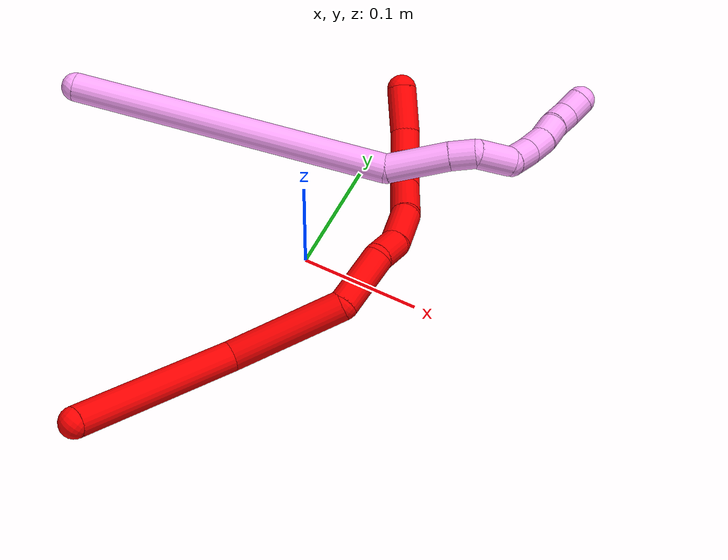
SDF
<sdf version="1.7">
 <world name="default">
  <model name="photoneo_s_sensor">
   <static>1</static>
   <pose>0 0 2 1.57079 1.57079 3.14159</pose>
   <link name="link">
    <inertial><mass>0.1</mass></inertial>
    <sensor name="sensor" type="depth">
     <update_rate>30</update_rate>
     <camera>
      <horizontal_fov>1.22</horizontal_fov>
      <image><width>1920</width><height>1200</height><format>B8G8R8</format></image>
      <clip><near>0.1</near><far>4</far></clip>
      <depth_camera><output>points</output></depth_camera>
     </camera>
     <plugin name="camera_plugin" filename="libgazebo_ros_depth_camera.so">
      <baseline>0.2</baseline>
      <alwaysOn>1</alwaysOn>
      <updateRate>0.0</updateRate>
      <cameraName>camera_ir</cameraName>
      <imageTopicName>/camera/color/image_raw</imageTopicName>
      <cameraInfoTopicName>/camera/color/camera_info</cameraInfoTopicName>
      <depthImageTopicName>/camera/depth/image_raw</depthImageTopicName>
      <depthImageCameraInfoTopicName>/camera/depth/camera_info</depthImageCameraInfoTopicName>
      <pointCloudTopicName>/camera/depth/points</pointCloudTopicName>
      <frameName>fr_optical</frameName>
      <pointCloudCutoff>0.1</pointCloudCutoff>
      <pointCloudCutoffMax>2.0</pointCloudCutoffMax>
      <distortionK1>0</distortionK1>
      <distortionK2>0</distortionK2>
      <distortionK3>0</distortionK3>
      <distortionT1>0</distortionT1>
      <distortionT2>0</distortionT2>
      <CxPrime>0</CxPrime>
      <Cx>0</Cx>
      <Cy>0</Cy>
      <focalLength>0</focalLength>
      <hackBaseline>0</hackBaseline>
     </plugin>
    </sensor>
   </link>
  </model>
  <model name="bin">
   <static>1</static>
   <link name="bottom">
    <collision name="collision-bottom">
     <pose>0 0 -0.01 0 -0 0</pose>
     <geometry><box><size>0.8 0.6 0.02</size></box></geometry>
     <surface>
      <friction><ode><mu>100</mu><mu2>100</mu2></ode></friction>
      <contact><collide_bitmask>65535</collide_bitmask></contact>
     </surface>
    </collision>
   </link>
   <link name="west_wall">
    <collision name="collision-west_wall">
     <pose>-0.41 0 0.1 0 -0 0</pose>
     <geometry><box><size>0.02 0.6 0.2</size></box></geometry>
     <surface>
      <friction><ode><mu>100</mu><mu2>100</mu2></ode></friction>
      <contact><collide_bitmask>65535</collide_bitmask></contact>
     </surface>
    </collision>
   </link>
   <link name="east_wall">
    <collision name="collision-east_wall">
     <pose>0.41 0 0.1 0 -0 0</pose>
     <geometry><box><size>0.02 0.6 0.2</size></box></geometry>
     <surface>
      <friction><ode><mu>100</mu><mu2>100</mu2></ode></friction>
      <contact><collide_bitmask>65535</collide_bitmask></contact>
     </surface>
    </collision>
   </link>
   <link name="south_wall">
    <collision name="collision-south_wall">
     <pose>0 -0.31 0.1 0 -0 0</pose>
     <geometry><box><size>0.8 0.02 0.2</size></box></geometry>
     <surface>
      <friction><ode><mu>100</mu><mu2>100</mu2></ode></friction>
      <contact><collide_bitmask>65535</collide_bitmask></contact>
     </surface>
    </collision>
   </link>
   <link name="north_wall">
    <collision name="collision-north_wall">
     <pose>0 0.31 0.1 0 -0 0</pose>
     <geometry><box><size>0.8 0.02 0.2</size></box></geometry>
     <surface>
      <friction><ode><mu>100</mu><mu2>100</mu2></ode></friction>
      <contact><collide_bitmask>65535</collide_bitmask></contact>
     </surface>
    </collision>
   </link>
  </model>
  <model name="2">
   <static>0</static>
   <link name="2">
    <collision name="collision-cylinder-e_1_1_4">
     <pose>0.003201 0.069492 -0.030069 -1.97916 0.04225 -0.064304</pose>
     <geometry><cylinder><radius>0.0125</radius><length>0.151572</length></cylinder></geometry>
     <surface>
      <friction><ode><mu>1.16</mu><mu2>1.16</mu2><slip1>0</slip1><slip2>0</slip2></ode></friction>
      <contact><ode><kp>1e+06</kp><kd>1</kd><max_vel>0</max_vel><min_depth>0.001</min_depth></ode></contact>
     </surface>
    </collision>
    <visual name="visual-cylinder-e_1_1_4">
     <pose>0.003201 0.069492 -0.030069 -1.97916 0.04225 -0.064304</pose>
     <geometry><cylinder><radius>0.0125</radius><length>0.151572</length></cylinder></geometry>
     <material><ambient>1 0 0 1</ambient></material>
    </visual>
    <collision name="collision-cylinder-e_2_4_5">
     <pose>0.0408 0.166781 -0.081696 -2.23047 0.774196 -1.388</pose>
     <geometry><cylinder><radius>0.0125</radius><length>0.0984</length></cylinder></geometry>
     <surface>
      <friction><ode><mu>1.16</mu><mu2>1.16</mu2><slip1>0</slip1><slip2>0</slip2></ode></friction>
      <contact><ode><kp>1e+06</kp><kd>1</kd><max_vel>0</max_vel><min_depth>0.001</min_depth></ode></contact>
     </surface>
    </collision>
    <visual name="visual-cylinder-e_2_4_5">
     <pose>0.0408 0.166781 -0.081696 -2.23047 0.774196 -1.388</pose>
     <geometry><cylinder><radius>0.0125</radius><length>0.0984</length></cylinder></geometry>
     <material><ambient>1 0 0 1</ambient></material>
    </visual>
    <collision name="collision-cylinder-e_3_5_6">
     <pose>0.084958 0.218039 -0.10255 -1.54075 0.39407 -0.382692</pose>
     <geometry><cylinder><radius>0.0125</radius><length>0.050839</length></cylinder></geometry>
     <surface>
      <friction><ode><mu>1.16</mu><mu2>1.16</mu2><slip1>0</slip1><slip2>0</slip2></ode></friction>
      <contact><ode><kp>1e+06</kp><kd>1</kd><max_vel>0</max_vel><min_depth>0.001</min_depth></ode></contact>
     </surface>
    </collision>
    <visual name="visual-cylinder-e_3_5_6">
     <pose>0.084958 0.218039 -0.10255 -1.54075 0.39407 -0.382692</pose>
     <geometry><cylinder><radius>0.0125</radius><length>0.050839</length></cylinder></geometry>
     <material><ambient>1 0 0 1</ambient></material>
    </visual>
    <collision name="collision-cylinder-e_4_6_7">
     <pose>0.09453 0.254264 -0.10402 -1.73961 -0.014492 0.017171</pose>
     <geometry><cylinder><radius>0.0125</radius><length>0.025901</length></cylinder></geometry>
     <surface>
      <friction><ode><mu>1.16</mu><mu2>1.16</mu2><slip1>0</slip1><slip2>0</slip2></ode></friction>
      <contact><ode><kp>1e+06</kp><kd>1</kd><max_vel>0</max_vel><min_depth>0.001</min_depth></ode></contact>
     </surface>
    </collision>
    <visual name="visual-cylinder-e_4_6_7">
     <pose>0.09453 0.254264 -0.10402 -1.73961 -0.014492 0.017171</pose>
     <geometry><cylinder><radius>0.0125</radius><length>0.025901</length></cylinder></geometry>
     <material><ambient>1 0 0 1</ambient></material>
    </visual>
    <collision name="collision-cylinder-e_5_7_8">
     <pose>0.093548 0.28514 -0.102915 -1.39159 -0.043101 0.035996</pose>
     <geometry><cylinder><radius>0.0125</radius><length>0.036845</length></cylinder></geometry>
     <surface>
      <friction><ode><mu>1.16</mu><mu2>1.16</mu2><slip1>0</slip1><slip2>0</slip2></ode></friction>
      <contact><ode><kp>1e+06</kp><kd>1</kd><max_vel>0</max_vel><min_depth>0.001</min_depth></ode></contact>
     </surface>
    </collision>
    <visual name="visual-cylinder-e_5_7_8">
     <pose>0.093548 0.28514 -0.102915 -1.39159 -0.043101 0.035996</pose>
     <geometry><cylinder><radius>0.0125</radius><length>0.036845</length></cylinder></geometry>
     <material><ambient>1 0 0 1</ambient></material>
    </visual>
    <collision name="collision-cylinder-e_6_8_9">
     <pose>0.087153 0.322217 -0.092946 -1.23179 -0.271647 0.192844</pose>
     <geometry><cylinder><radius>0.0125</radius><length>0.041753</length></cylinder></geometry>
     <surface>
      <friction><ode><mu>1.16</mu><mu2>1.16</mu2><slip1>0</slip1><slip2>0</slip2></ode></friction>
      <contact><ode><kp>1e+06</kp><kd>1</kd><max_vel>0</max_vel><min_depth>0.001</min_depth></ode></contact>
     </surface>
    </collision>
    <visual name="visual-cylinder-e_6_8_9">
     <pose>0.087153 0.322217 -0.092946 -1.23179 -0.271647 0.192844</pose>
     <geometry><cylinder><radius>0.0125</radius><length>0.041753</length></cylinder></geometry>
     <material><ambient>1 0 0 1</ambient></material>
    </visual>
    <collision name="collision-cylinder-e_7_9_10">
     <pose>0.083096 0.355043 -0.078282 -1.04857 0.09633 -0.055733</pose>
     <geometry><cylinder><radius>0.0125</radius><length>0.032131</length></cylinder></geometry>
     <surface>
      <friction><ode><mu>1.16</mu><mu2>1.16</mu2><slip1>0</slip1><slip2>0</slip2></ode></friction>
      <contact><ode><kp>1e+06</kp><kd>1</kd><max_vel>0</max_vel><min_depth>0.001</min_depth></ode></contact>
     </surface>
    </collision>
    <visual name="visual-cylinder-e_7_9_10">
     <pose>0.083096 0.355043 -0.078282 -1.04857 0.09633 -0.055733</pose>
     <geometry><cylinder><radius>0.0125</radius><length>0.032131</length></cylinder></geometry>
     <material><ambient>1 0 0 1</ambient></material>
    </visual>
    <collision name="collision-cylinder-e_8_10_11">
     <pose>0.087536 0.377778 -0.063917 -0.946888 0.258732 -0.133097</pose>
     <geometry><cylinder><radius>0.0125</radius><length>0.022624</length></cylinder></geometry>
     <surface>
      <friction><ode><mu>1.16</mu><mu2>1.16</mu2><slip1>0</slip1><slip2>0</slip2></ode></friction>
      <contact><ode><kp>1e+06</kp><kd>1</kd><max_vel>0</max_vel><min_depth>0.001</min_depth></ode></contact>
     </surface>
    </collision>
    <visual name="visual-cylinder-e_8_10_11">
     <pose>0.087536 0.377778 -0.063917 -0.946888 0.258732 -0.133097</pose>
     <geometry><cylinder><radius>0.0125</radius><length>0.022624</length></cylinder></geometry>
     <material><ambient>1 0 0 1</ambient></material>
    </visual>
    <collision name="collision-cylinder-e_9_11_2">
     <pose>0.097368 0.399978 -0.044375 -0.791863 0.354894 -0.149645</pose>
     <geometry><cylinder><radius>0.0125</radius><length>0.039934</length></cylinder></geometry>
     <surface>
      <friction><ode><mu>1.16</mu><mu2>1.16</mu2><slip1>0</slip1><slip2>0</slip2></ode></friction>
      <contact><ode><kp>1e+06</kp><kd>1</kd><max_vel>0</max_vel><min_depth>0.001</min_depth></ode></contact>
     </surface>
    </collision>
    <visual name="visual-cylinder-e_9_11_2">
     <pose>0.097368 0.399978 -0.044375 -0.791863 0.354894 -0.149645</pose>
     <geometry><cylinder><radius>0.0125</radius><length>0.039934</length></cylinder></geometry>
     <material><ambient>1 0 0 1</ambient></material>
    </visual>
    <collision name="collision-sphere-2">
     <pose>0.104307 0.413302 -0.031222 0 -0 0</pose>
     <geometry><sphere><radius>0.0125</radius></sphere></geometry>
     <surface>
      <friction><ode><mu>1.16</mu><mu2>1.16</mu2><slip1>0</slip1><slip2>0</slip2></ode></friction>
      <contact><ode><kp>1e+06</kp><kd>1</kd><max_vel>0</max_vel><min_depth>0.001</min_depth></ode></contact>
     </surface>
    </collision>
    <visual name="visual-sphere-2">
     <pose>0.104307 0.413302 -0.031222 0 -0 0</pose>
     <geometry><sphere><radius>0.0125</radius></sphere></geometry>
     <material><ambient>1 0 0 1</ambient></material>
    </visual>
    <collision name="collision-sphere-11">
     <pose>0.09043 0.386653 -0.057528 0 -0 0</pose>
     <geometry><sphere><radius>0.0125</radius></sphere></geometry>
     <surface>
      <friction><ode><mu>1.16</mu><mu2>1.16</mu2><slip1>0</slip1><slip2>0</slip2></ode></friction>
      <contact><ode><kp>1e+06</kp><kd>1</kd><max_vel>0</max_vel><min_depth>0.001</min_depth></ode></contact>
     </surface>
    </collision>
    <visual name="visual-sphere-11">
     <pose>0.09043 0.386653 -0.057528 0 -0 0</pose>
     <geometry><sphere><radius>0.0125</radius></sphere></geometry>
     <material><ambient>1 0 0 1</ambient></material>
    </visual>
    <collision name="collision-sphere-10">
     <pose>0.084642 0.368903 -0.070305 0 -0 0</pose>
     <geometry><sphere><radius>0.0125</radius></sphere></geometry>
     <surface>
      <friction><ode><mu>1.16</mu><mu2>1.16</mu2><slip1>0</slip1><slip2>0</slip2></ode></friction>
      <contact><ode><kp>1e+06</kp><kd>1</kd><max_vel>0</max_vel><min_depth>0.001</min_depth></ode></contact>
     </surface>
    </collision>
    <visual name="visual-sphere-10">
     <pose>0.084642 0.368903 -0.070305 0 -0 0</pose>
     <geometry><sphere><radius>0.0125</radius></sphere></geometry>
     <material><ambient>1 0 0 1</ambient></material>
    </visual>
    <collision name="collision-sphere-9">
     <pose>0.081551 0.341184 -0.086258 0 -0 0</pose>
     <geometry><sphere><radius>0.0125</radius></sphere></geometry>
     <surface>
      <friction><ode><mu>1.16</mu><mu2>1.16</mu2><slip1>0</slip1><slip2>0</slip2></ode></friction>
      <contact><ode><kp>1e+06</kp><kd>1</kd><max_vel>0</max_vel><min_depth>0.001</min_depth></ode></contact>
     </surface>
    </collision>
    <visual name="visual-sphere-9">
     <pose>0.081551 0.341184 -0.086258 0 -0 0</pose>
     <geometry><sphere><radius>0.0125</radius></sphere></geometry>
     <material><ambient>1 0 0 1</ambient></material>
    </visual>
    <collision name="collision-sphere-4">
     <pose>0.006402 0.138984 -0.060137 0 -0 0</pose>
     <geometry><sphere><radius>0.0125</radius></sphere></geometry>
     <surface>
      <friction><ode><mu>1.16</mu><mu2>1.16</mu2><slip1>0</slip1><slip2>0</slip2></ode></friction>
      <contact><ode><kp>1e+06</kp><kd>1</kd><max_vel>0</max_vel><min_depth>0.001</min_depth></ode></contact>
     </surface>
    </collision>
    <visual name="visual-sphere-4">
     <pose>0.006402 0.138984 -0.060137 0 -0 0</pose>
     <geometry><sphere><radius>0.0125</radius></sphere></geometry>
     <material><ambient>1 0 0 1</ambient></material>
    </visual>
    <collision name="collision-sphere-1">
     <geometry><sphere><radius>0.0125</radius></sphere></geometry>
     <surface>
      <friction><ode><mu>1.16</mu><mu2>1.16</mu2><slip1>0</slip1><slip2>0</slip2></ode></friction>
      <contact><ode><kp>1e+06</kp><kd>1</kd><max_vel>0</max_vel><min_depth>0.001</min_depth></ode></contact>
     </surface>
    </collision>
    <visual name="visual-sphere-1">
     <geometry><sphere><radius>0.0125</radius></sphere></geometry>
     <material><ambient>1 0 0 1</ambient></material>
    </visual>
    <collision name="collision-sphere-8">
     <pose>0.092754 0.30325 -0.099634 0 -0 0</pose>
     <geometry><sphere><radius>0.0125</radius></sphere></geometry>
     <surface>
      <friction><ode><mu>1.16</mu><mu2>1.16</mu2><slip1>0</slip1><slip2>0</slip2></ode></friction>
      <contact><ode><kp>1e+06</kp><kd>1</kd><max_vel>0</max_vel><min_depth>0.001</min_depth></ode></contact>
     </surface>
    </collision>
    <visual name="visual-sphere-8">
     <pose>0.092754 0.30325 -0.099634 0 -0 0</pose>
     <geometry><sphere><radius>0.0125</radius></sphere></geometry>
     <material><ambient>1 0 0 1</ambient></material>
    </visual>
    <collision name="collision-sphere-5">
     <pose>0.075198 0.194578 -0.103255 0 -0 0</pose>
     <geometry><sphere><radius>0.0125</radius></sphere></geometry>
     <surface>
      <friction><ode><mu>1.16</mu><mu2>1.16</mu2><slip1>0</slip1><slip2>0</slip2></ode></friction>
      <contact><ode><kp>1e+06</kp><kd>1</kd><max_vel>0</max_vel><min_depth>0.001</min_depth></ode></contact>
     </surface>
    </collision>
    <visual name="visual-sphere-5">
     <pose>0.075198 0.194578 -0.103255 0 -0 0</pose>
     <geometry><sphere><radius>0.0125</radius></sphere></geometry>
     <material><ambient>1 0 0 1</ambient></material>
    </visual>
    <collision name="collision-sphere-6">
     <pose>0.094717 0.241499 -0.101845 0 -0 0</pose>
     <geometry><sphere><radius>0.0125</radius></sphere></geometry>
     <surface>
      <friction><ode><mu>1.16</mu><mu2>1.16</mu2><slip1>0</slip1><slip2>0</slip2></ode></friction>
      <contact><ode><kp>1e+06</kp><kd>1</kd><max_vel>0</max_vel><min_depth>0.001</min_depth></ode></contact>
     </surface>
    </collision>
    <visual name="visual-sphere-6">
     <pose>0.094717 0.241499 -0.101845 0 -0 0</pose>
     <geometry><sphere><radius>0.0125</radius></sphere></geometry>
     <material><ambient>1 0 0 1</ambient></material>
    </visual>
    <collision name="collision-sphere-7">
     <pose>0.094342 0.267029 -0.106196 0 -0 0</pose>
     <geometry><sphere><radius>0.0125</radius></sphere></geometry>
     <surface>
      <friction><ode><mu>1.16</mu><mu2>1.16</mu2><slip1>0</slip1><slip2>0</slip2></ode></friction>
      <contact><ode><kp>1e+06</kp><kd>1</kd><max_vel>0</max_vel><min_depth>0.001</min_depth></ode></contact>
     </surface>
    </collision>
    <visual name="visual-sphere-7">
     <pose>0.094342 0.267029 -0.106196 0 -0 0</pose>
     <geometry><sphere><radius>0.0125</radius></sphere></geometry>
     <material><ambient>1 0 0 1</ambient></material>
    </visual>
    <inertial>
     <pose>0.053784 0.209004 -0.067821 0 -0 0</pose>
     <mass>0.5</mass>
     <inertia>
      <ixx>0.000271</ixx>
      <ixy>0</ixy>
      <ixz>0</ixz>
      <iyy>-0.000116</iyy>
      <iyz>0</iyz>
      <izz>-0.000434</izz>
     </inertia>
    </inertial>
   </link>
   <pose>-0.063325 -0.244188 0.067193 -0.648793 -1.0869 0.602614</pose>
  </model>
  <model name="4">
   <static>0</static>
   <link name="4">
    <collision name="collision-cylinder-e_1_1_4">
     <pose>0.11054 -0.054722 0.0652 0.698249 0.914589 0.354513</pose>
     <geometry><cylinder><radius>0.0125</radius><length>0.279032</length></cylinder></geometry>
     <surface>
      <friction><ode><mu>1.16</mu><mu2>1.16</mu2><slip1>0</slip1><slip2>0</slip2></ode></friction>
      <contact><ode><kp>1e+06</kp><kd>1</kd><max_vel>0</max_vel><min_depth>0.001</min_depth></ode></contact>
     </surface>
    </collision>
    <visual name="visual-cylinder-e_1_1_4">
     <pose>0.11054 -0.054722 0.0652 0.698249 0.914589 0.354513</pose>
     <geometry><cylinder><radius>0.0125</radius><length>0.279032</length></cylinder></geometry>
     <material><ambient>1 0.65098 0.996078 1</ambient></material>
    </visual>
    <collision name="collision-cylinder-e_2_4_5">
     <pose>0.233839 -0.120872 0.151344 0.499462 0.491054 0.127651</pose>
     <geometry><cylinder><radius>0.0125</radius><length>0.054111</length></cylinder></geometry>
     <surface>
      <friction><ode><mu>1.16</mu><mu2>1.16</mu2><slip1>0</slip1><slip2>0</slip2></ode></friction>
      <contact><ode><kp>1e+06</kp><kd>1</kd><max_vel>0</max_vel><min_depth>0.001</min_depth></ode></contact>
     </surface>
    </collision>
    <visual name="visual-cylinder-e_2_4_5">
     <pose>0.233839 -0.120872 0.151344 0.499462 0.491054 0.127651</pose>
     <geometry><cylinder><radius>0.0125</radius><length>0.054111</length></cylinder></geometry>
     <material><ambient>1 0.65098 0.996078 1</ambient></material>
    </visual>
    <collision name="collision-cylinder-e_3_5_6">
     <pose>0.252765 -0.137098 0.180303 0.539482 0.583566 0.165704</pose>
     <geometry><cylinder><radius>0.0125</radius><length>0.022389</length></cylinder></geometry>
     <surface>
      <friction><ode><mu>1.16</mu><mu2>1.16</mu2><slip1>0</slip1><slip2>0</slip2></ode></friction>
      <contact><ode><kp>1e+06</kp><kd>1</kd><max_vel>0</max_vel><min_depth>0.001</min_depth></ode></contact>
     </surface>
    </collision>
    <visual name="visual-cylinder-e_3_5_6">
     <pose>0.252765 -0.137098 0.180303 0.539482 0.583566 0.165704</pose>
     <geometry><cylinder><radius>0.0125</radius><length>0.022389</length></cylinder></geometry>
     <material><ambient>1 0.65098 0.996078 1</ambient></material>
    </visual>
    <collision name="collision-cylinder-e_4_6_7">
     <pose>0.271901 -0.140342 0.198068 -0.158106 0.920046 -0.078461</pose>
     <geometry><cylinder><radius>0.0125</radius><length>0.032596</length></cylinder></geometry>
     <surface>
      <friction><ode><mu>1.16</mu><mu2>1.16</mu2><slip1>0</slip1><slip2>0</slip2></ode></friction>
      <contact><ode><kp>1e+06</kp><kd>1</kd><max_vel>0</max_vel><min_depth>0.001</min_depth></ode></contact>
     </surface>
    </collision>
    <visual name="visual-cylinder-e_4_6_7">
     <pose>0.271901 -0.140342 0.198068 -0.158106 0.920046 -0.078461</pose>
     <geometry><cylinder><radius>0.0125</radius><length>0.032596</length></cylinder></geometry>
     <material><ambient>1 0.65098 0.996078 1</ambient></material>
    </visual>
    <collision name="collision-cylinder-e_5_7_8">
     <pose>0.28797 -0.131968 0.218338 -0.575153 0.24253 -0.072057</pose>
     <geometry><cylinder><radius>0.0125</radius><length>0.02583</length></cylinder></geometry>
     <surface>
      <friction><ode><mu>1.16</mu><mu2>1.16</mu2><slip1>0</slip1><slip2>0</slip2></ode></friction>
      <contact><ode><kp>1e+06</kp><kd>1</kd><max_vel>0</max_vel><min_depth>0.001</min_depth></ode></contact>
     </surface>
    </collision>
    <visual name="visual-cylinder-e_5_7_8">
     <pose>0.28797 -0.131968 0.218338 -0.575153 0.24253 -0.072057</pose>
     <geometry><cylinder><radius>0.0125</radius><length>0.02583</length></cylinder></geometry>
     <material><ambient>1 0.65098 0.996078 1</ambient></material>
    </visual>
    <collision name="collision-cylinder-e_6_8_9">
     <pose>0.292915 -0.120799 0.239438 -0.390015 0.159787 -0.031625</pose>
     <geometry><cylinder><radius>0.0125</radius><length>0.023174</length></cylinder></geometry>
     <surface>
      <friction><ode><mu>1.16</mu><mu2>1.16</mu2><slip1>0</slip1><slip2>0</slip2></ode></friction>
      <contact><ode><kp>1e+06</kp><kd>1</kd><max_vel>0</max_vel><min_depth>0.001</min_depth></ode></contact>
     </surface>
    </collision>
    <visual name="visual-cylinder-e_6_8_9">
     <pose>0.292915 -0.120799 0.239438 -0.390015 0.159787 -0.031625</pose>
     <geometry><cylinder><radius>0.0125</radius><length>0.023174</length></cylinder></geometry>
     <material><ambient>1 0.65098 0.996078 1</ambient></material>
    </visual>
    <collision name="collision-cylinder-e_7_9_10">
     <pose>0.294348 -0.112281 0.259643 -0.408753 -0.039103 0.008106</pose>
     <geometry><cylinder><radius>0.0125</radius><length>0.020993</length></cylinder></geometry>
     <surface>
      <friction><ode><mu>1.16</mu><mu2>1.16</mu2><slip1>0</slip1><slip2>0</slip2></ode></friction>
      <contact><ode><kp>1e+06</kp><kd>1</kd><max_vel>0</max_vel><min_depth>0.001</min_depth></ode></contact>
     </surface>
    </collision>
    <visual name="visual-cylinder-e_7_9_10">
     <pose>0.294348 -0.112281 0.259643 -0.408753 -0.039103 0.008106</pose>
     <geometry><cylinder><radius>0.0125</radius><length>0.020993</length></cylinder></geometry>
     <material><ambient>1 0.65098 0.996078 1</ambient></material>
    </visual>
    <collision name="collision-cylinder-e_8_10_11">
     <pose>0.295389 -0.102841 0.278704 -0.509425 0.133488 -0.034804</pose>
     <geometry><cylinder><radius>0.0125</radius><length>0.021812</length></cylinder></geometry>
     <surface>
      <friction><ode><mu>1.16</mu><mu2>1.16</mu2><slip1>0</slip1><slip2>0</slip2></ode></friction>
      <contact><ode><kp>1e+06</kp><kd>1</kd><max_vel>0</max_vel><min_depth>0.001</min_depth></ode></contact>
     </surface>
    </collision>
    <visual name="visual-cylinder-e_8_10_11">
     <pose>0.295389 -0.102841 0.278704 -0.509425 0.133488 -0.034804</pose>
     <geometry><cylinder><radius>0.0125</radius><length>0.021812</length></cylinder></geometry>
     <material><ambient>1 0.65098 0.996078 1</ambient></material>
    </visual>
    <collision name="collision-cylinder-e_9_11_2">
     <pose>0.296856 -0.096843 0.298145 -0.072476 0.001551 -5.6e-05</pose>
     <geometry><cylinder><radius>0.0125</radius><length>0.020063</length></cylinder></geometry>
     <surface>
      <friction><ode><mu>1.16</mu><mu2>1.16</mu2><slip1>0</slip1><slip2>0</slip2></ode></friction>
      <contact><ode><kp>1e+06</kp><kd>1</kd><max_vel>0</max_vel><min_depth>0.001</min_depth></ode></contact>
     </surface>
    </collision>
    <visual name="visual-cylinder-e_9_11_2">
     <pose>0.296856 -0.096843 0.298145 -0.072476 0.001551 -5.6e-05</pose>
     <geometry><cylinder><radius>0.0125</radius><length>0.020063</length></cylinder></geometry>
     <material><ambient>1 0.65098 0.996078 1</ambient></material>
    </visual>
    <collision name="collision-sphere-2">
     <pose>0.296872 -0.096117 0.30815 0 -0 0</pose>
     <geometry><sphere><radius>0.0125</radius></sphere></geometry>
     <surface>
      <friction><ode><mu>1.16</mu><mu2>1.16</mu2><slip1>0</slip1><slip2>0</slip2></ode></friction>
      <contact><ode><kp>1e+06</kp><kd>1</kd><max_vel>0</max_vel><min_depth>0.001</min_depth></ode></contact>
     </surface>
    </collision>
    <visual name="visual-sphere-2">
     <pose>0.296872 -0.096117 0.30815 0 -0 0</pose>
     <geometry><sphere><radius>0.0125</radius></sphere></geometry>
     <material><ambient>1 0.65098 0.996078 1</ambient></material>
    </visual>
    <collision name="collision-sphere-11">
     <pose>0.296841 -0.09757 0.28814 0 -0 0</pose>
     <geometry><sphere><radius>0.0125</radius></sphere></geometry>
     <surface>
      <friction><ode><mu>1.16</mu><mu2>1.16</mu2><slip1>0</slip1><slip2>0</slip2></ode></friction>
      <contact><ode><kp>1e+06</kp><kd>1</kd><max_vel>0</max_vel><min_depth>0.001</min_depth></ode></contact>
     </surface>
    </collision>
    <visual name="visual-sphere-11">
     <pose>0.296841 -0.09757 0.28814 0 -0 0</pose>
     <geometry><sphere><radius>0.0125</radius></sphere></geometry>
     <material><ambient>1 0.65098 0.996078 1</ambient></material>
    </visual>
    <collision name="collision-sphere-10">
     <pose>0.293938 -0.108112 0.269267 0 -0 0</pose>
     <geometry><sphere><radius>0.0125</radius></sphere></geometry>
     <surface>
      <friction><ode><mu>1.16</mu><mu2>1.16</mu2><slip1>0</slip1><slip2>0</slip2></ode></friction>
      <contact><ode><kp>1e+06</kp><kd>1</kd><max_vel>0</max_vel><min_depth>0.001</min_depth></ode></contact>
     </surface>
    </collision>
    <visual name="visual-sphere-10">
     <pose>0.293938 -0.108112 0.269267 0 -0 0</pose>
     <geometry><sphere><radius>0.0125</radius></sphere></geometry>
     <material><ambient>1 0.65098 0.996078 1</ambient></material>
    </visual>
    <collision name="collision-sphere-9">
     <pose>0.294758 -0.11645 0.250019 0 -0 0</pose>
     <geometry><sphere><radius>0.0125</radius></sphere></geometry>
     <surface>
      <friction><ode><mu>1.16</mu><mu2>1.16</mu2><slip1>0</slip1><slip2>0</slip2></ode></friction>
      <contact><ode><kp>1e+06</kp><kd>1</kd><max_vel>0</max_vel><min_depth>0.001</min_depth></ode></contact>
     </surface>
    </collision>
    <visual name="visual-sphere-9">
     <pose>0.294758 -0.11645 0.250019 0 -0 0</pose>
     <geometry><sphere><radius>0.0125</radius></sphere></geometry>
     <material><ambient>1 0.65098 0.996078 1</ambient></material>
    </visual>
    <collision name="collision-sphere-4">
     <pose>0.221081 -0.109445 0.1304 0 -0 0</pose>
     <geometry><sphere><radius>0.0125</radius></sphere></geometry>
     <surface>
      <friction><ode><mu>1.16</mu><mu2>1.16</mu2><slip1>0</slip1><slip2>0</slip2></ode></friction>
      <contact><ode><kp>1e+06</kp><kd>1</kd><max_vel>0</max_vel><min_depth>0.001</min_depth></ode></contact>
     </surface>
    </collision>
    <visual name="visual-sphere-4">
     <pose>0.221081 -0.109445 0.1304 0 -0 0</pose>
     <geometry><sphere><radius>0.0125</radius></sphere></geometry>
     <material><ambient>1 0.65098 0.996078 1</ambient></material>
    </visual>
    <collision name="collision-sphere-1">
     <geometry><sphere><radius>0.0125</radius></sphere></geometry>
     <surface>
      <friction><ode><mu>1.16</mu><mu2>1.16</mu2><slip1>0</slip1><slip2>0</slip2></ode></friction>
      <contact><ode><kp>1e+06</kp><kd>1</kd><max_vel>0</max_vel><min_depth>0.001</min_depth></ode></contact>
     </surface>
    </collision>
    <visual name="visual-sphere-1">
     <geometry><sphere><radius>0.0125</radius></sphere></geometry>
     <material><ambient>1 0.65098 0.996078 1</ambient></material>
    </visual>
    <collision name="collision-sphere-8">
     <pose>0.291071 -0.125148 0.228858 0 -0 0</pose>
     <geometry><sphere><radius>0.0125</radius></sphere></geometry>
     <surface>
      <friction><ode><mu>1.16</mu><mu2>1.16</mu2><slip1>0</slip1><slip2>0</slip2></ode></friction>
      <contact><ode><kp>1e+06</kp><kd>1</kd><max_vel>0</max_vel><min_depth>0.001</min_depth></ode></contact>
     </surface>
    </collision>
    <visual name="visual-sphere-8">
     <pose>0.291071 -0.125148 0.228858 0 -0 0</pose>
     <geometry><sphere><radius>0.0125</radius></sphere></geometry>
     <material><ambient>1 0.65098 0.996078 1</ambient></material>
    </visual>
    <collision name="collision-sphere-5">
     <pose>0.246597 -0.132299 0.172288 0 -0 0</pose>
     <geometry><sphere><radius>0.0125</radius></sphere></geometry>
     <surface>
      <friction><ode><mu>1.16</mu><mu2>1.16</mu2><slip1>0</slip1><slip2>0</slip2></ode></friction>
      <contact><ode><kp>1e+06</kp><kd>1</kd><max_vel>0</max_vel><min_depth>0.001</min_depth></ode></contact>
     </surface>
    </collision>
    <visual name="visual-sphere-5">
     <pose>0.246597 -0.132299 0.172288 0 -0 0</pose>
     <geometry><sphere><radius>0.0125</radius></sphere></geometry>
     <material><ambient>1 0.65098 0.996078 1</ambient></material>
    </visual>
    <collision name="collision-sphere-6">
     <pose>0.258933 -0.141897 0.188318 0 -0 0</pose>
     <geometry><sphere><radius>0.0125</radius></sphere></geometry>
     <surface>
      <friction><ode><mu>1.16</mu><mu2>1.16</mu2><slip1>0</slip1><slip2>0</slip2></ode></friction>
      <contact><ode><kp>1e+06</kp><kd>1</kd><max_vel>0</max_vel><min_depth>0.001</min_depth></ode></contact>
     </surface>
    </collision>
    <visual name="visual-sphere-6">
     <pose>0.258933 -0.141897 0.188318 0 -0 0</pose>
     <geometry><sphere><radius>0.0125</radius></sphere></geometry>
     <material><ambient>1 0.65098 0.996078 1</ambient></material>
    </visual>
    <collision name="collision-sphere-7">
     <pose>0.284868 -0.138788 0.207818 0 -0 0</pose>
     <geometry><sphere><radius>0.0125</radius></sphere></geometry>
     <surface>
      <friction><ode><mu>1.16</mu><mu2>1.16</mu2><slip1>0</slip1><slip2>0</slip2></ode></friction>
      <contact><ode><kp>1e+06</kp><kd>1</kd><max_vel>0</max_vel><min_depth>0.001</min_depth></ode></contact>
     </surface>
    </collision>
    <visual name="visual-sphere-7">
     <pose>0.284868 -0.138788 0.207818 0 -0 0</pose>
     <geometry><sphere><radius>0.0125</radius></sphere></geometry>
     <material><ambient>1 0.65098 0.996078 1</ambient></material>
    </visual>
    <inertial>
     <pose>0.181648 -0.084411 0.13115 0 -0 0</pose>
     <mass>0.5</mass>
     <inertia>
      <ixx>0.001479</ixx>
      <ixy>0</ixy>
      <ixz>0</ixz>
      <iyy>0.002038</iyy>
      <iyz>0</iyz>
      <izz>-0.000714</izz>
     </inertia>
    </inertial>
   </link>
   <pose>-0.247475 0.045314 0.038072 -1.34026 0.574549 -0.201108</pose>
  </model>
 </world>
</sdf>
